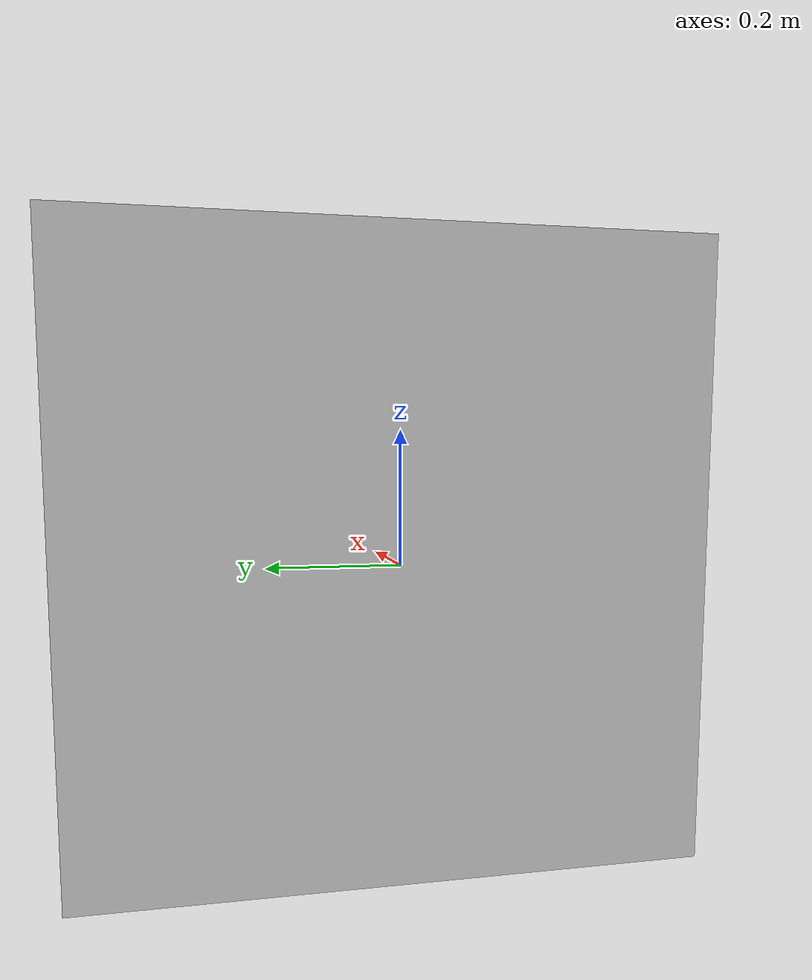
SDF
<?xml version="1.0"?>
<sdf version="1.6">
  <model name="ArUco Marker 15">
    <link name="link">
      <inertial>
        <pose>0 0 0 0 0 0</pose>
        <mass>0.001</mass>
        <inertia>
          <ixx>3.7499999999999997e-06</ixx>
          <ixy>0.0</ixy>
          <ixz>0.0</ixz>
          <iyy>1.8750008333333333e-06</iyy>
          <iyz>0.0</iyz>
          <izz>1.8750008333333333e-06</izz>
        </inertia>
      </inertial>
      <visual name="front_visual">
        <pose>0.00005 0 0 0 0 0</pose>
        <geometry>
          <box>
            <size>0.0001 1 1</size>
          </box>
        </geometry>
        <material>
          <script>
            <uri>model://AR15/materials/scripts</uri>
            <uri>model://AR15/materials/textures</uri>
            <name>Marker15</name>
          </script>
        </material>
      </visual>
      <!-- Hide the marker from the back -->
      <visual name="rear_visual">
        <pose>-0.00005 0 0 0 0 0</pose>
        <geometry>
          <box>
            <size>0.0001 1 1</size>
          </box>
        </geometry>
      </visual>
      <collision name="collision">
        <pose>0 0 0 0 0 0</pose>
        <geometry>
          <box>
            <size>0.0001 1 1</size>
          </box>
        </geometry>
      </collision>
    </link>
  </model>
</sdf>
